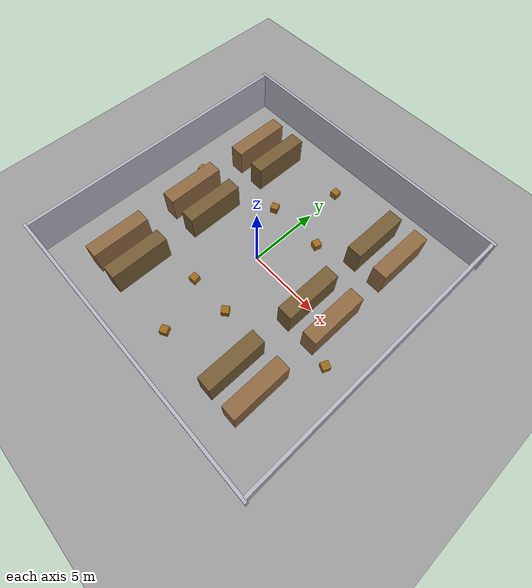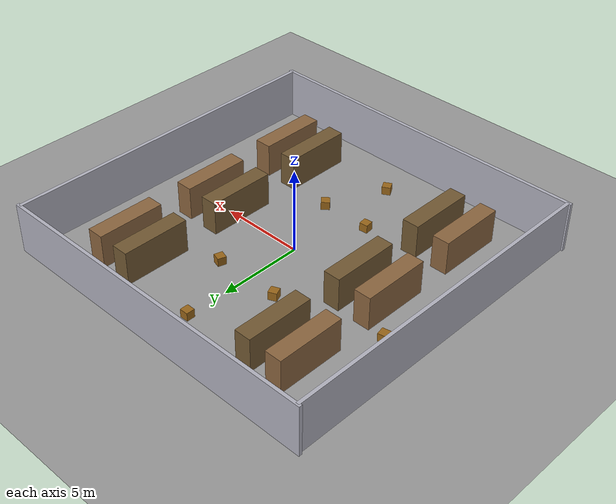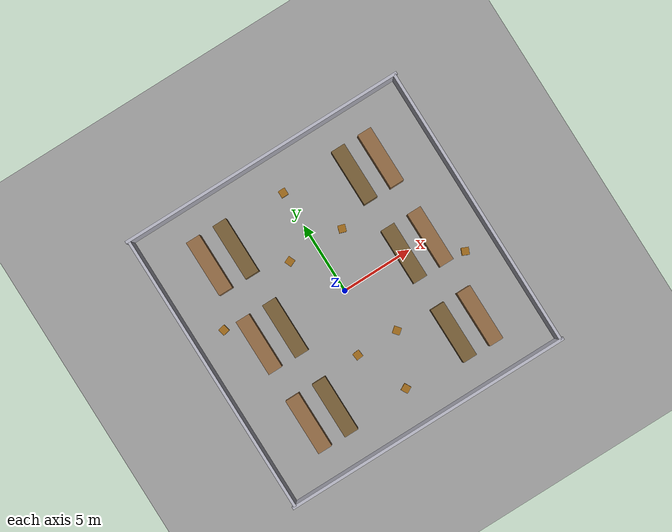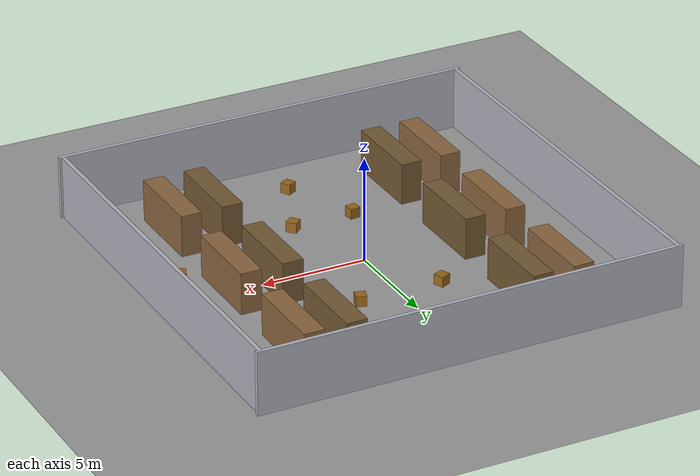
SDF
<?xml version="1.0" ?>
<!--
  Industrial warehouse world for Nav2 testing.
  20 m × 20 m room with perimeter walls, two rows of shelving,
  and scattered crates to create a realistic obstacle environment.
-->
<sdf version="1.8">
  <world name="industrial">

    <!-- Gazebo Fortress (Ignition 6) system plugins -->
    <plugin filename="ignition-gazebo-physics-system"
            name="ignition::gazebo::systems::Physics"/>
    <plugin filename="ignition-gazebo-user-commands-system"
            name="ignition::gazebo::systems::UserCommands"/>
    <plugin filename="ignition-gazebo-scene-broadcaster-system"
            name="ignition::gazebo::systems::SceneBroadcaster"/>
    <plugin filename="ignition-gazebo-contact-system"
            name="ignition::gazebo::systems::Contact"/>
    <plugin filename="libignition-gazebo-sensors-system.so"
      name="ignition::gazebo::systems::Sensors">
      <render_engine>ogre2</render_engine>
    </plugin>
    <plugin filename="ignition-gazebo-imu-system"
            name="ignition::gazebo::systems::Imu"/>

    <gravity>0 0 -9.81</gravity>
    <magnetic_field>6e-06 2.3e-05 -4.2e-05</magnetic_field>
    <atmosphere type="adiabatic"/>

    <physics name="1ms" type="ignored">
      <max_step_size>0.001</max_step_size>
      <real_time_factor>1.0</real_time_factor>
    </physics>

    <!-- ── Lighting ─────────────────────────────────────────── -->
    <light type="directional" name="sun">
      <cast_shadows>true</cast_shadows>
      <pose>0 0 15 0 0 0</pose>
      <diffuse>0.9 0.9 0.9 1</diffuse>
      <specular>0.3 0.3 0.3 1</specular>
      <attenuation>
        <range>1000</range><constant>0.9</constant>
        <linear>0.01</linear><quadratic>0.001</quadratic>
      </attenuation>
      <direction>-0.3 0.1 -0.9</direction>
    </light>

    <light type="directional" name="fill_light">
      <cast_shadows>false</cast_shadows>
      <pose>0 0 10 0 0 0</pose>
      <diffuse>0.5 0.5 0.6 1</diffuse>
      <specular>0.1 0.1 0.1 1</specular>
      <attenuation>
        <range>1000</range><constant>0.9</constant>
        <linear>0.01</linear><quadratic>0.001</quadratic>
      </attenuation>
      <direction>0.3 -0.1 -0.9</direction>
    </light>

    <!-- ── Ground plane ─────────────────────────────────────── -->
    <model name="ground_plane">
      <static>true</static>
      <link name="link">
        <collision name="collision">
          <geometry>
            <plane><normal>0 0 1</normal><size>100 100</size></plane>
          </geometry>
          <surface>
            <friction><ode><mu>1.0</mu><mu2>1.0</mu2></ode></friction>
          </surface>
        </collision>
        <visual name="visual">
          <geometry>
            <plane><normal>0 0 1</normal><size>100 100</size></plane>
          </geometry>
          <material>
            <ambient>0.6 0.6 0.6 1</ambient>
            <diffuse>0.6 0.6 0.6 1</diffuse>
          </material>
        </visual>
      </link>
    </model>

    <!-- ── Perimeter walls (20 m × 20 m room, 3 m tall, 0.2 m thick) ── -->

    <!-- North wall  y=+10 -->
    <model name="wall_north">
      <static>true</static>
      <pose>0 10 1.5 0 0 0</pose>
      <link name="link">
        <collision name="col"><geometry><box><size>20.4 0.2 3.0</size></box></geometry></collision>
        <visual name="vis">
          <geometry><box><size>20.4 0.2 3.0</size></box></geometry>
          <material><ambient>0.7 0.7 0.75 1</ambient><diffuse>0.7 0.7 0.75 1</diffuse></material>
        </visual>
      </link>
    </model>

    <!-- South wall  y=-10 -->
    <model name="wall_south">
      <static>true</static>
      <pose>0 -10 1.5 0 0 0</pose>
      <link name="link">
        <collision name="col"><geometry><box><size>20.4 0.2 3.0</size></box></geometry></collision>
        <visual name="vis">
          <geometry><box><size>20.4 0.2 3.0</size></box></geometry>
          <material><ambient>0.7 0.7 0.75 1</ambient><diffuse>0.7 0.7 0.75 1</diffuse></material>
        </visual>
      </link>
    </model>

    <!-- East wall  x=+10 -->
    <model name="wall_east">
      <static>true</static>
      <pose>10 0 1.5 0 0 0</pose>
      <link name="link">
        <collision name="col"><geometry><box><size>0.2 20.0 3.0</size></box></geometry></collision>
        <visual name="vis">
          <geometry><box><size>0.2 20.0 3.0</size></box></geometry>
          <material><ambient>0.7 0.7 0.75 1</ambient><diffuse>0.7 0.7 0.75 1</diffuse></material>
        </visual>
      </link>
    </model>

    <!-- West wall  x=-10 -->
    <model name="wall_west">
      <static>true</static>
      <pose>-10 0 1.5 0 0 0</pose>
      <link name="link">
        <collision name="col"><geometry><box><size>0.2 20.0 3.0</size></box></geometry></collision>
        <visual name="vis">
          <geometry><box><size>0.2 20.0 3.0</size></box></geometry>
          <material><ambient>0.7 0.7 0.75 1</ambient><diffuse>0.7 0.7 0.75 1</diffuse></material>
        </visual>
      </link>
    </model>

    <!-- ── Shelving rows ─────────────────────────────────────── -->

    <!-- Row A: west outer row -->
    <model name="shelf_A1"><static>true</static><pose>-6.5 -6 1.0 0 0 0</pose>
      <link name="link">
        <collision name="col"><geometry><box><size>1.0 4.0 2.0</size></box></geometry></collision>
        <visual name="vis"><geometry><box><size>1.0 4.0 2.0</size></box></geometry>
          <material><ambient>0.55 0.4 0.25 1</ambient><diffuse>0.55 0.4 0.25 1</diffuse></material>
        </visual>
      </link>
    </model>
    <model name="shelf_A2"><static>true</static><pose>-6.5 0 1.0 0 0 0</pose>
      <link name="link">
        <collision name="col"><geometry><box><size>1.0 4.0 2.0</size></box></geometry></collision>
        <visual name="vis"><geometry><box><size>1.0 4.0 2.0</size></box></geometry>
          <material><ambient>0.55 0.4 0.25 1</ambient><diffuse>0.55 0.4 0.25 1</diffuse></material>
        </visual>
      </link>
    </model>
    <model name="shelf_A3"><static>true</static><pose>-6.5 6 1.0 0 0 0</pose>
      <link name="link">
        <collision name="col"><geometry><box><size>1.0 4.0 2.0</size></box></geometry></collision>
        <visual name="vis"><geometry><box><size>1.0 4.0 2.0</size></box></geometry>
          <material><ambient>0.55 0.4 0.25 1</ambient><diffuse>0.55 0.4 0.25 1</diffuse></material>
        </visual>
      </link>
    </model>

    <!-- Row B: west inner row -->
    <model name="shelf_B1"><static>true</static><pose>-4.5 -6 1.0 0 0 0</pose>
      <link name="link">
        <collision name="col"><geometry><box><size>1.0 4.0 2.0</size></box></geometry></collision>
        <visual name="vis"><geometry><box><size>1.0 4.0 2.0</size></box></geometry>
          <material><ambient>0.45 0.35 0.2 1</ambient><diffuse>0.45 0.35 0.2 1</diffuse></material>
        </visual>
      </link>
    </model>
    <model name="shelf_B2"><static>true</static><pose>-4.5 0 1.0 0 0 0</pose>
      <link name="link">
        <collision name="col"><geometry><box><size>1.0 4.0 2.0</size></box></geometry></collision>
        <visual name="vis"><geometry><box><size>1.0 4.0 2.0</size></box></geometry>
          <material><ambient>0.45 0.35 0.2 1</ambient><diffuse>0.45 0.35 0.2 1</diffuse></material>
        </visual>
      </link>
    </model>
    <model name="shelf_B3"><static>true</static><pose>-4.5 6 1.0 0 0 0</pose>
      <link name="link">
        <collision name="col"><geometry><box><size>1.0 4.0 2.0</size></box></geometry></collision>
        <visual name="vis"><geometry><box><size>1.0 4.0 2.0</size></box></geometry>
          <material><ambient>0.45 0.35 0.2 1</ambient><diffuse>0.45 0.35 0.2 1</diffuse></material>
        </visual>
      </link>
    </model>

    <!-- Row C: east inner row -->
    <model name="shelf_C1"><static>true</static><pose>4.5 -6 1.0 0 0 0</pose>
      <link name="link">
        <collision name="col"><geometry><box><size>1.0 4.0 2.0</size></box></geometry></collision>
        <visual name="vis"><geometry><box><size>1.0 4.0 2.0</size></box></geometry>
          <material><ambient>0.45 0.35 0.2 1</ambient><diffuse>0.45 0.35 0.2 1</diffuse></material>
        </visual>
      </link>
    </model>
    <model name="shelf_C2"><static>true</static><pose>4.5 0 1.0 0 0 0</pose>
      <link name="link">
        <collision name="col"><geometry><box><size>1.0 4.0 2.0</size></box></geometry></collision>
        <visual name="vis"><geometry><box><size>1.0 4.0 2.0</size></box></geometry>
          <material><ambient>0.45 0.35 0.2 1</ambient><diffuse>0.45 0.35 0.2 1</diffuse></material>
        </visual>
      </link>
    </model>
    <model name="shelf_C3"><static>true</static><pose>4.5 6 1.0 0 0 0</pose>
      <link name="link">
        <collision name="col"><geometry><box><size>1.0 4.0 2.0</size></box></geometry></collision>
        <visual name="vis"><geometry><box><size>1.0 4.0 2.0</size></box></geometry>
          <material><ambient>0.45 0.35 0.2 1</ambient><diffuse>0.45 0.35 0.2 1</diffuse></material>
        </visual>
      </link>
    </model>

    <!-- Row D: east outer row -->
    <model name="shelf_D1"><static>true</static><pose>6.5 -6 1.0 0 0 0</pose>
      <link name="link">
        <collision name="col"><geometry><box><size>1.0 4.0 2.0</size></box></geometry></collision>
        <visual name="vis"><geometry><box><size>1.0 4.0 2.0</size></box></geometry>
          <material><ambient>0.55 0.4 0.25 1</ambient><diffuse>0.55 0.4 0.25 1</diffuse></material>
        </visual>
      </link>
    </model>
    <model name="shelf_D2"><static>true</static><pose>6.5 0 1.0 0 0 0</pose>
      <link name="link">
        <collision name="col"><geometry><box><size>1.0 4.0 2.0</size></box></geometry></collision>
        <visual name="vis"><geometry><box><size>1.0 4.0 2.0</size></box></geometry>
          <material><ambient>0.55 0.4 0.25 1</ambient><diffuse>0.55 0.4 0.25 1</diffuse></material>
        </visual>
      </link>
    </model>
    <model name="shelf_D3"><static>true</static><pose>6.5 6 1.0 0 0 0</pose>
      <link name="link">
        <collision name="col"><geometry><box><size>1.0 4.0 2.0</size></box></geometry></collision>
        <visual name="vis"><geometry><box><size>1.0 4.0 2.0</size></box></geometry>
          <material><ambient>0.55 0.4 0.25 1</ambient><diffuse>0.55 0.4 0.25 1</diffuse></material>
        </visual>
      </link>
    </model>

    <!-- ── Crates (0.5 m cube obstacles) ────────────────────── -->
    <model name="crate_1"><static>true</static><pose>-2.0  3.5 0.25 0 0 0.4</pose>
      <link name="link">
        <collision name="col"><geometry><box><size>0.5 0.5 0.5</size></box></geometry></collision>
        <visual name="vis"><geometry><box><size>0.5 0.5 0.5</size></box></geometry>
          <material><ambient>0.6 0.4 0.1 1</ambient><diffuse>0.6 0.4 0.1 1</diffuse></material>
        </visual>
      </link>
    </model>
    <model name="crate_2"><static>true</static><pose> 2.0  3.5 0.25 0 0 -0.3</pose>
      <link name="link">
        <collision name="col"><geometry><box><size>0.5 0.5 0.5</size></box></geometry></collision>
        <visual name="vis"><geometry><box><size>0.5 0.5 0.5</size></box></geometry>
          <material><ambient>0.6 0.4 0.1 1</ambient><diffuse>0.6 0.4 0.1 1</diffuse></material>
        </visual>
      </link>
    </model>
    <model name="crate_3"><static>true</static><pose>-1.5 -4.0 0.25 0 0 0.1</pose>
      <link name="link">
        <collision name="col"><geometry><box><size>0.5 0.5 0.5</size></box></geometry></collision>
        <visual name="vis"><geometry><box><size>0.5 0.5 0.5</size></box></geometry>
          <material><ambient>0.6 0.4 0.1 1</ambient><diffuse>0.6 0.4 0.1 1</diffuse></material>
        </visual>
      </link>
    </model>
    <model name="crate_4"><static>true</static><pose> 1.5 -4.0 0.25 0 0 0.7</pose>
      <link name="link">
        <collision name="col"><geometry><box><size>0.5 0.5 0.5</size></box></geometry></collision>
        <visual name="vis"><geometry><box><size>0.5 0.5 0.5</size></box></geometry>
          <material><ambient>0.6 0.4 0.1 1</ambient><diffuse>0.6 0.4 0.1 1</diffuse></material>
        </visual>
      </link>
    </model>
    <model name="crate_5"><static>true</static><pose> 0.0  7.5 0.25 0 0 0.0</pose>
      <link name="link">
        <collision name="col"><geometry><box><size>0.5 0.5 0.5</size></box></geometry></collision>
        <visual name="vis"><geometry><box><size>0.5 0.5 0.5</size></box></geometry>
          <material><ambient>0.6 0.4 0.1 1</ambient><diffuse>0.6 0.4 0.1 1</diffuse></material>
        </visual>
      </link>
    </model>
    <model name="crate_6"><static>true</static><pose> 0.0 -7.5 0.25 0 0 0.5</pose>
      <link name="link">
        <collision name="col"><geometry><box><size>0.5 0.5 0.5</size></box></geometry></collision>
        <visual name="vis"><geometry><box><size>0.5 0.5 0.5</size></box></geometry>
          <material><ambient>0.6 0.4 0.1 1</ambient><diffuse>0.6 0.4 0.1 1</diffuse></material>
        </visual>
      </link>
    </model>
    <model name="crate_7"><static>true</static><pose>-8.0  2.0 0.25 0 0 0.2</pose>
      <link name="link">
        <collision name="col"><geometry><box><size>0.5 0.5 0.5</size></box></geometry></collision>
        <visual name="vis"><geometry><box><size>0.5 0.5 0.5</size></box></geometry>
          <material><ambient>0.6 0.4 0.1 1</ambient><diffuse>0.6 0.4 0.1 1</diffuse></material>
        </visual>
      </link>
    </model>
    <model name="crate_8"><static>true</static><pose> 8.0 -2.0 0.25 0 0 -0.4</pose>
      <link name="link">
        <collision name="col"><geometry><box><size>0.5 0.5 0.5</size></box></geometry></collision>
        <visual name="vis"><geometry><box><size>0.5 0.5 0.5</size></box></geometry>
          <material><ambient>0.6 0.4 0.1 1</ambient><diffuse>0.6 0.4 0.1 1</diffuse></material>
        </visual>
      </link>
    </model>

  </world>
</sdf>
